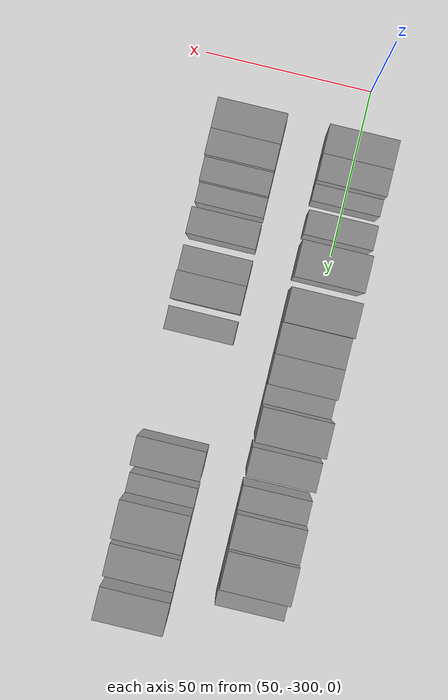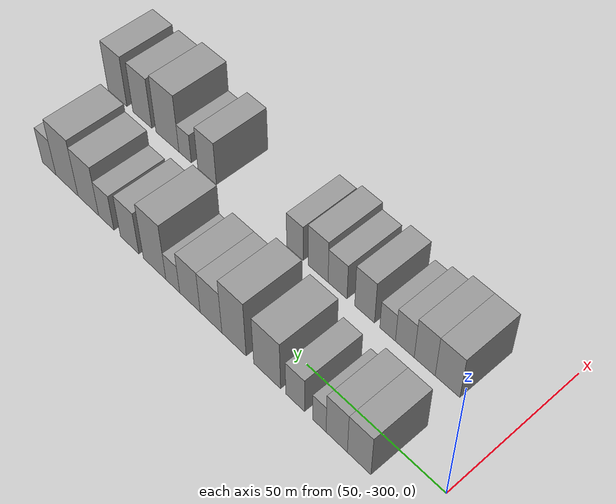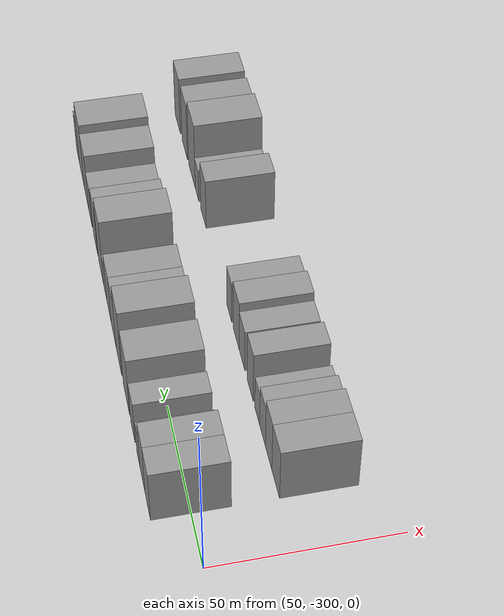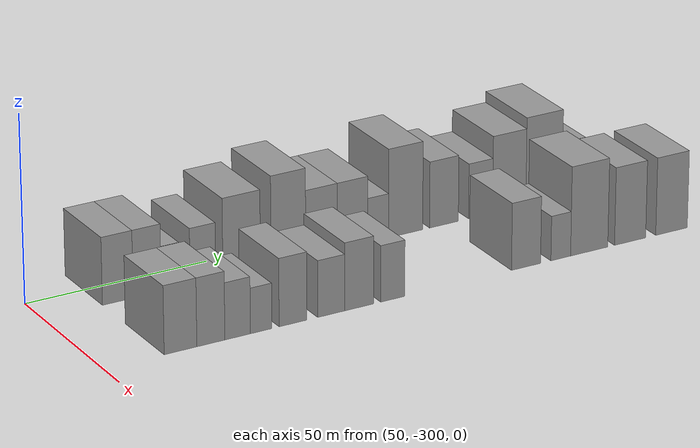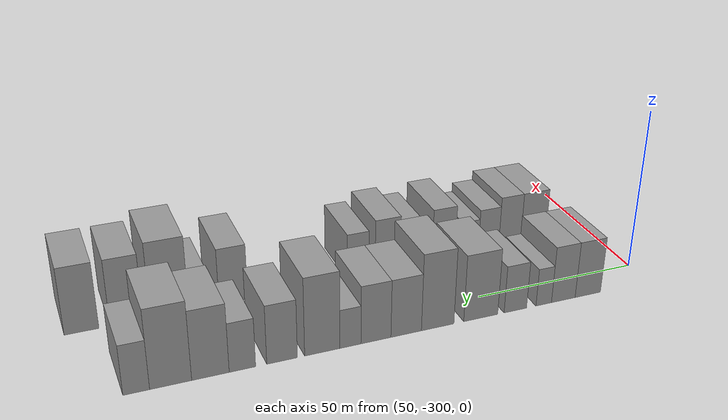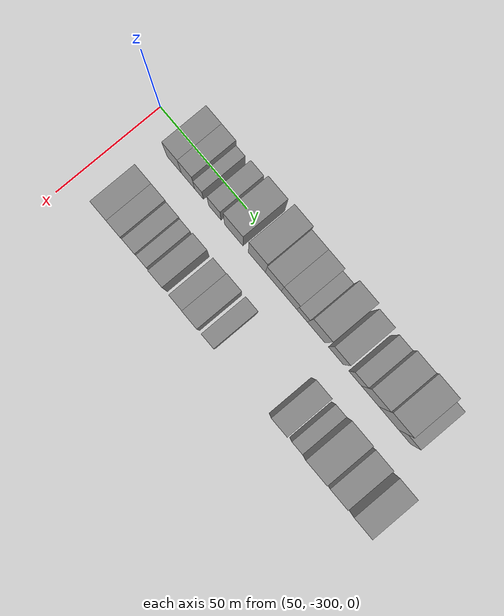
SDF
<sdf version="1.6">
 <world name="default">
  <model name="building_1">
   <static>1</static>
   <pose>50.0000 -279.8190 0 0.000000 0.000000 0.000000</pose>
   <link name="link">
    <pose>0 0 9.00 0 0 0</pose>
    <collision name="collision"><geometry><box><size>20.0000 8.3619 18.0000</size></box></geometry></collision>
    <visual name="visual">
     <cast_shadows>0</cast_shadows>
     <geometry><box><size>20.0000 8.3619 18.0000</size></box></geometry>
     <material>
      <script>
       <uri>model://grey_wall/materials/scripts</uri>
       <uri>model://grey_wall/materials/textures</uri>
       <name>vrc/grey_wall</name>
      </script>
     </material>
    </visual>
   </link>
  </model>
  <model name="building_2">
   <static>1</static>
   <pose>50.0000 -271.7829 0 0.000000 0.000000 0.000000</pose>
   <link name="link">
    <pose>0 0 9.00 0 0 0</pose>
    <collision name="collision"><geometry><box><size>20.0000 7.7102 18.0000</size></box></geometry></collision>
    <visual name="visual">
     <cast_shadows>0</cast_shadows>
     <geometry><box><size>20.0000 7.7102 18.0000</size></box></geometry>
     <material>
      <script>
       <uri>model://grey_wall/materials/scripts</uri>
       <uri>model://grey_wall/materials/textures</uri>
       <name>vrc/grey_wall</name>
      </script>
     </material>
    </visual>
   </link>
  </model>
  <model name="building_3">
   <static>1</static>
   <pose>50.0000 -265.4402 0 0.000000 0.000000 0.000000</pose>
   <link name="link">
    <pose>0 0 6.00 0 0 0</pose>
    <collision name="collision"><geometry><box><size>20.0000 4.9754 12.0000</size></box></geometry></collision>
    <visual name="visual">
     <cast_shadows>0</cast_shadows>
     <geometry><box><size>20.0000 4.9754 12.0000</size></box></geometry>
     <material>
      <script>
       <uri>model://grey_wall/materials/scripts</uri>
       <uri>model://grey_wall/materials/textures</uri>
       <name>vrc/grey_wall</name>
      </script>
     </material>
    </visual>
   </link>
  </model>
  <model name="building_4">
   <static>1</static>
   <pose>50.0000 -256.4035 0 0.000000 0.000000 0.000000</pose>
   <link name="link">
    <pose>0 0 7.50 0 0 0</pose>
    <collision name="collision"><geometry><box><size>20.0000 7.0979 15.0000</size></box></geometry></collision>
    <visual name="visual">
     <cast_shadows>0</cast_shadows>
     <geometry><box><size>20.0000 7.0979 15.0000</size></box></geometry>
     <material>
      <script>
       <uri>model://grey_wall/materials/scripts</uri>
       <uri>model://grey_wall/materials/textures</uri>
       <name>vrc/grey_wall</name>
      </script>
     </material>
    </visual>
   </link>
  </model>
  <model name="building_5">
   <static>1</static>
   <pose>50.0000 -245.6082 0 0.000000 0.000000 0.000000</pose>
   <link name="link">
    <pose>0 0 10.50 0 0 0</pose>
    <collision name="collision"><geometry><box><size>20.0000 10.4927 21.0000</size></box></geometry></collision>
    <visual name="visual">
     <cast_shadows>0</cast_shadows>
     <geometry><box><size>20.0000 10.4927 21.0000</size></box></geometry>
     <material>
      <script>
       <uri>model://grey_wall/materials/scripts</uri>
       <uri>model://grey_wall/materials/textures</uri>
       <name>vrc/grey_wall</name>
      </script>
     </material>
    </visual>
   </link>
  </model>
  <model name="building_6">
   <static>1</static>
   <pose>50.0000 -232.4707 0 0.000000 0.000000 0.000000</pose>
   <link name="link">
    <pose>0 0 12.00 0 0 0</pose>
    <collision name="collision"><geometry><box><size>20.0000 9.7823 24.0000</size></box></geometry></collision>
    <visual name="visual">
     <cast_shadows>0</cast_shadows>
     <geometry><box><size>20.0000 9.7823 24.0000</size></box></geometry>
     <material>
      <script>
       <uri>model://grey_wall/materials/scripts</uri>
       <uri>model://grey_wall/materials/textures</uri>
       <name>vrc/grey_wall</name>
      </script>
     </material>
    </visual>
   </link>
  </model>
  <model name="building_7">
   <static>1</static>
   <pose>50.0000 -223.0820 0 0.000000 0.000000 0.000000</pose>
   <link name="link">
    <pose>0 0 9.00 0 0 0</pose>
    <collision name="collision"><geometry><box><size>20.0000 8.9953 18.0000</size></box></geometry></collision>
    <visual name="visual">
     <cast_shadows>0</cast_shadows>
     <geometry><box><size>20.0000 8.9953 18.0000</size></box></geometry>
     <material>
      <script>
       <uri>model://grey_wall/materials/scripts</uri>
       <uri>model://grey_wall/materials/textures</uri>
       <name>vrc/grey_wall</name>
      </script>
     </material>
    </visual>
   </link>
  </model>
  <model name="building_8">
   <static>1</static>
   <pose>50.0000 -214.2455 0 0.000000 0.000000 0.000000</pose>
   <link name="link">
    <pose>0 0 9.00 0 0 0</pose>
    <collision name="collision"><geometry><box><size>20.0000 8.6777 18.0000</size></box></geometry></collision>
    <visual name="visual">
     <cast_shadows>0</cast_shadows>
     <geometry><box><size>20.0000 8.6777 18.0000</size></box></geometry>
     <material>
      <script>
       <uri>model://grey_wall/materials/scripts</uri>
       <uri>model://grey_wall/materials/textures</uri>
       <name>vrc/grey_wall</name>
      </script>
     </material>
    </visual>
   </link>
  </model>
  <model name="building_9">
   <static>1</static>
   <pose>50.0000 -206.9102 0 0.000000 0.000000 0.000000</pose>
   <link name="link">
    <pose>0 0 6.00 0 0 0</pose>
    <collision name="collision"><geometry><box><size>20.0000 5.9929 12.0000</size></box></geometry></collision>
    <visual name="visual">
     <cast_shadows>0</cast_shadows>
     <geometry><box><size>20.0000 5.9929 12.0000</size></box></geometry>
     <material>
      <script>
       <uri>model://grey_wall/materials/scripts</uri>
       <uri>model://grey_wall/materials/textures</uri>
       <name>vrc/grey_wall</name>
      </script>
     </material>
    </visual>
   </link>
  </model>
  <model name="building_10">
   <static>1</static>
   <pose>50.0000 -198.9653 0 0.000000 0.000000 0.000000</pose>
   <link name="link">
    <pose>0 0 12.00 0 0 0</pose>
    <collision name="collision"><geometry><box><size>20.0000 9.8969 24.0000</size></box></geometry></collision>
    <visual name="visual">
     <cast_shadows>0</cast_shadows>
     <geometry><box><size>20.0000 9.8969 24.0000</size></box></geometry>
     <material>
      <script>
       <uri>model://grey_wall/materials/scripts</uri>
       <uri>model://grey_wall/materials/textures</uri>
       <name>vrc/grey_wall</name>
      </script>
     </material>
    </visual>
   </link>
  </model>
  <model name="building_11">
   <static>1</static>
   <pose>50.0000 -187.8194 0 0.000000 0.000000 0.000000</pose>
   <link name="link">
    <pose>0 0 9.00 0 0 0</pose>
    <collision name="collision"><geometry><box><size>20.0000 8.3949 18.0000</size></box></geometry></collision>
    <visual name="visual">
     <cast_shadows>0</cast_shadows>
     <geometry><box><size>20.0000 8.3949 18.0000</size></box></geometry>
     <material>
      <script>
       <uri>model://grey_wall/materials/scripts</uri>
       <uri>model://grey_wall/materials/textures</uri>
       <name>vrc/grey_wall</name>
      </script>
     </material>
    </visual>
   </link>
  </model>
  <model name="building_12">
   <static>1</static>
   <pose>50.0000 -177.0867 0 0.000000 0.000000 0.000000</pose>
   <link name="link">
    <pose>0 0 7.50 0 0 0</pose>
    <collision name="collision"><geometry><box><size>20.0000 7.0706 15.0000</size></box></geometry></collision>
    <visual name="visual">
     <cast_shadows>0</cast_shadows>
     <geometry><box><size>20.0000 7.0706 15.0000</size></box></geometry>
     <material>
      <script>
       <uri>model://grey_wall/materials/scripts</uri>
       <uri>model://grey_wall/materials/textures</uri>
       <name>vrc/grey_wall</name>
      </script>
     </material>
    </visual>
   </link>
  </model>
  <model name="building_13">
   <static>1</static>
   <pose>50.0000 -168.6290 0 0.000000 0.000000 0.000000</pose>
   <link name="link">
    <pose>0 0 10.50 0 0 0</pose>
    <collision name="collision"><geometry><box><size>20.0000 9.8448 21.0000</size></box></geometry></collision>
    <visual name="visual">
     <cast_shadows>0</cast_shadows>
     <geometry><box><size>20.0000 9.8448 21.0000</size></box></geometry>
     <material>
      <script>
       <uri>model://grey_wall/materials/scripts</uri>
       <uri>model://grey_wall/materials/textures</uri>
       <name>vrc/grey_wall</name>
      </script>
     </material>
    </visual>
   </link>
  </model>
  <model name="building_14">
   <static>1</static>
   <pose>50.0000 -158.3106 0 0.000000 0.000000 0.000000</pose>
   <link name="link">
    <pose>0 0 12.00 0 0 0</pose>
    <collision name="collision"><geometry><box><size>20.0000 10.7921 24.0000</size></box></geometry></collision>
    <visual name="visual">
     <cast_shadows>0</cast_shadows>
     <geometry><box><size>20.0000 10.7921 24.0000</size></box></geometry>
     <material>
      <script>
       <uri>model://grey_wall/materials/scripts</uri>
       <uri>model://grey_wall/materials/textures</uri>
       <name>vrc/grey_wall</name>
      </script>
     </material>
    </visual>
   </link>
  </model>
  <model name="building_15">
   <static>1</static>
   <pose>50.0000 -149.5389 0 0.000000 0.000000 0.000000</pose>
   <link name="link">
    <pose>0 0 7.50 0 0 0</pose>
    <collision name="collision"><geometry><box><size>20.0000 6.7513 15.0000</size></box></geometry></collision>
    <visual name="visual">
     <cast_shadows>0</cast_shadows>
     <geometry><box><size>20.0000 6.7513 15.0000</size></box></geometry>
     <material>
      <script>
       <uri>model://grey_wall/materials/scripts</uri>
       <uri>model://grey_wall/materials/textures</uri>
       <name>vrc/grey_wall</name>
      </script>
     </material>
    </visual>
   </link>
  </model>
  <model name="building_61">
   <static>1</static>
   <pose>82.0000 -279.6116 0 0.000000 0.000000 0.000000</pose>
   <link name="link">
    <pose>0 0 9.00 0 0 0</pose>
    <collision name="collision"><geometry><box><size>20.0000 8.7768 18.0000</size></box></geometry></collision>
    <visual name="visual">
     <cast_shadows>0</cast_shadows>
     <geometry><box><size>20.0000 8.7768 18.0000</size></box></geometry>
     <material>
      <script>
       <uri>model://grey_wall/materials/scripts</uri>
       <uri>model://grey_wall/materials/textures</uri>
       <name>vrc/grey_wall</name>
      </script>
     </material>
    </visual>
   </link>
  </model>
  <model name="building_62">
   <static>1</static>
   <pose>82.0000 -271.4348 0 0.000000 0.000000 0.000000</pose>
   <link name="link">
    <pose>0 0 9.00 0 0 0</pose>
    <collision name="collision"><geometry><box><size>20.0000 7.5769 18.0000</size></box></geometry></collision>
    <visual name="visual">
     <cast_shadows>0</cast_shadows>
     <geometry><box><size>20.0000 7.5769 18.0000</size></box></geometry>
     <material>
      <script>
       <uri>model://grey_wall/materials/scripts</uri>
       <uri>model://grey_wall/materials/textures</uri>
       <name>vrc/grey_wall</name>
      </script>
     </material>
    </visual>
   </link>
  </model>
  <model name="building_63">
   <static>1</static>
   <pose>82.0000 -264.1748 0 0.000000 0.000000 0.000000</pose>
   <link name="link">
    <pose>0 0 7.50 0 0 0</pose>
    <collision name="collision"><geometry><box><size>20.0000 6.9432 15.0000</size></box></geometry></collision>
    <visual name="visual">
     <cast_shadows>0</cast_shadows>
     <geometry><box><size>20.0000 6.9432 15.0000</size></box></geometry>
     <material>
      <script>
       <uri>model://grey_wall/materials/scripts</uri>
       <uri>model://grey_wall/materials/textures</uri>
       <name>vrc/grey_wall</name>
      </script>
     </material>
    </visual>
   </link>
  </model>
  <model name="building_64">
   <static>1</static>
   <pose>82.0000 -257.7788 0 0.000000 0.000000 0.000000</pose>
   <link name="link">
    <pose>0 0 6.00 0 0 0</pose>
    <collision name="collision"><geometry><box><size>20.0000 5.8489 12.0000</size></box></geometry></collision>
    <visual name="visual">
     <cast_shadows>0</cast_shadows>
     <geometry><box><size>20.0000 5.8489 12.0000</size></box></geometry>
     <material>
      <script>
       <uri>model://grey_wall/materials/scripts</uri>
       <uri>model://grey_wall/materials/textures</uri>
       <name>vrc/grey_wall</name>
      </script>
     </material>
    </visual>
   </link>
  </model>
  <model name="building_65">
   <static>1</static>
   <pose>82.0000 -249.0392 0 0.000000 0.000000 0.000000</pose>
   <link name="link">
    <pose>0 0 9.00 0 0 0</pose>
    <collision name="collision"><geometry><box><size>20.0000 7.6304 18.0000</size></box></geometry></collision>
    <visual name="visual">
     <cast_shadows>0</cast_shadows>
     <geometry><box><size>20.0000 7.6304 18.0000</size></box></geometry>
     <material>
      <script>
       <uri>model://grey_wall/materials/scripts</uri>
       <uri>model://grey_wall/materials/textures</uri>
       <name>vrc/grey_wall</name>
      </script>
     </material>
    </visual>
   </link>
  </model>
  <model name="building_66">
   <static>1</static>
   <pose>82.0000 -238.4993 0 0.000000 0.000000 0.000000</pose>
   <link name="link">
    <pose>0 0 7.50 0 0 0</pose>
    <collision name="collision"><geometry><box><size>20.0000 7.4493 15.0000</size></box></geometry></collision>
    <visual name="visual">
     <cast_shadows>0</cast_shadows>
     <geometry><box><size>20.0000 7.4493 15.0000</size></box></geometry>
     <material>
      <script>
       <uri>model://grey_wall/materials/scripts</uri>
       <uri>model://grey_wall/materials/textures</uri>
       <name>vrc/grey_wall</name>
      </script>
     </material>
    </visual>
   </link>
  </model>
  <model name="building_67">
   <static>1</static>
   <pose>82.0000 -230.7380 0 0.000000 0.000000 0.000000</pose>
   <link name="link">
    <pose>0 0 9.00 0 0 0</pose>
    <collision name="collision"><geometry><box><size>20.0000 8.0734 18.0000</size></box></geometry></collision>
    <visual name="visual">
     <cast_shadows>0</cast_shadows>
     <geometry><box><size>20.0000 8.0734 18.0000</size></box></geometry>
     <material>
      <script>
       <uri>model://grey_wall/materials/scripts</uri>
       <uri>model://grey_wall/materials/textures</uri>
       <name>vrc/grey_wall</name>
      </script>
     </material>
    </visual>
   </link>
  </model>
  <model name="building_68">
   <static>1</static>
   <pose>82.0000 -221.3300 0 0.000000 0.000000 0.000000</pose>
   <link name="link">
    <pose>0 0 7.50 0 0 0</pose>
    <collision name="collision"><geometry><box><size>20.0000 6.7426 15.0000</size></box></geometry></collision>
    <visual name="visual">
     <cast_shadows>0</cast_shadows>
     <geometry><box><size>20.0000 6.7426 15.0000</size></box></geometry>
     <material>
      <script>
       <uri>model://grey_wall/materials/scripts</uri>
       <uri>model://grey_wall/materials/textures</uri>
       <name>vrc/grey_wall</name>
      </script>
     </material>
    </visual>
   </link>
  </model>
  <model name="building_69">
   <static>1</static>
   <pose>82.0000 -183.3673 0 0.000000 0.000000 0.000000</pose>
   <link name="link">
    <pose>0 0 9.00 0 0 0</pose>
    <collision name="collision"><geometry><box><size>20.0000 8.3942 18.0000</size></box></geometry></collision>
    <visual name="visual">
     <cast_shadows>0</cast_shadows>
     <geometry><box><size>20.0000 8.3942 18.0000</size></box></geometry>
     <material>
      <script>
       <uri>model://grey_wall/materials/scripts</uri>
       <uri>model://grey_wall/materials/textures</uri>
       <name>vrc/grey_wall</name>
      </script>
     </material>
    </visual>
   </link>
  </model>
  <model name="building_70">
   <static>1</static>
   <pose>82.0000 -173.2988 0 0.000000 0.000000 0.000000</pose>
   <link name="link">
    <pose>0 0 6.00 0 0 0</pose>
    <collision name="collision"><geometry><box><size>20.0000 5.7428 12.0000</size></box></geometry></collision>
    <visual name="visual">
     <cast_shadows>0</cast_shadows>
     <geometry><box><size>20.0000 5.7428 12.0000</size></box></geometry>
     <material>
      <script>
       <uri>model://grey_wall/materials/scripts</uri>
       <uri>model://grey_wall/materials/textures</uri>
       <name>vrc/grey_wall</name>
      </script>
     </material>
    </visual>
   </link>
  </model>
  <model name="building_71">
   <static>1</static>
   <pose>82.0000 -164.9844 0 0.000000 0.000000 0.000000</pose>
   <link name="link">
    <pose>0 0 12.00 0 0 0</pose>
    <collision name="collision"><geometry><box><size>20.0000 10.8860 24.0000</size></box></geometry></collision>
    <visual name="visual">
     <cast_shadows>0</cast_shadows>
     <geometry><box><size>20.0000 10.8860 24.0000</size></box></geometry>
     <material>
      <script>
       <uri>model://grey_wall/materials/scripts</uri>
       <uri>model://grey_wall/materials/textures</uri>
       <name>vrc/grey_wall</name>
      </script>
     </material>
    </visual>
   </link>
  </model>
  <model name="building_72">
   <static>1</static>
   <pose>82.0000 -152.9470 0 0.000000 0.000000 0.000000</pose>
   <link name="link">
    <pose>0 0 10.50 0 0 0</pose>
    <collision name="collision"><geometry><box><size>20.0000 9.1887 21.0000</size></box></geometry></collision>
    <visual name="visual">
     <cast_shadows>0</cast_shadows>
     <geometry><box><size>20.0000 9.1887 21.0000</size></box></geometry>
     <material>
      <script>
       <uri>model://grey_wall/materials/scripts</uri>
       <uri>model://grey_wall/materials/textures</uri>
       <name>vrc/grey_wall</name>
      </script>
     </material>
    </visual>
   </link>
  </model>
  <model name="building_73">
   <static>1</static>
   <pose>82.0000 -140.6547 0 0.000000 0.000000 0.000000</pose>
   <link name="link">
    <pose>0 0 10.50 0 0 0</pose>
    <collision name="collision"><geometry><box><size>20.0000 9.3959 21.0000</size></box></geometry></collision>
    <visual name="visual">
     <cast_shadows>0</cast_shadows>
     <geometry><box><size>20.0000 9.3959 21.0000</size></box></geometry>
     <material>
      <script>
       <uri>model://grey_wall/materials/scripts</uri>
       <uri>model://grey_wall/materials/textures</uri>
       <name>vrc/grey_wall</name>
      </script>
     </material>
    </visual>
   </link>
  </model>
 </world>
</sdf>
